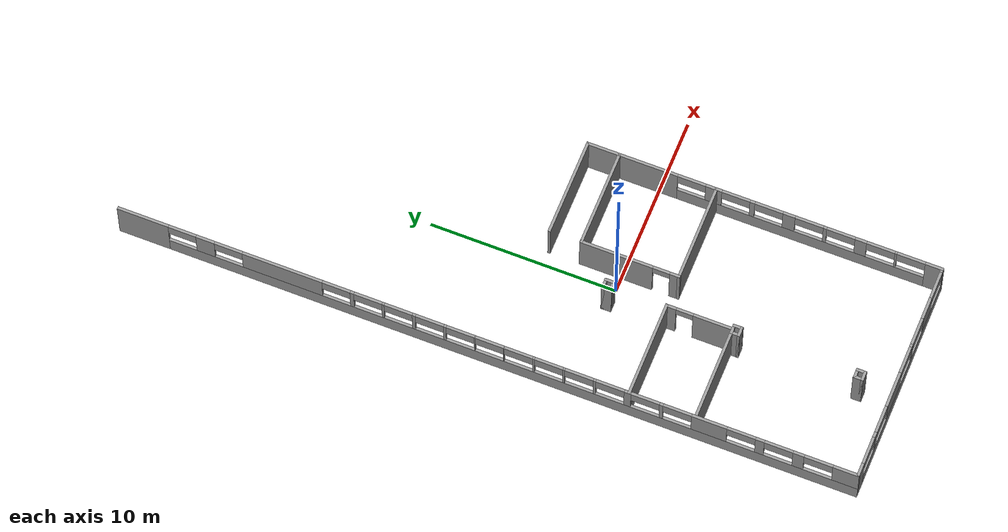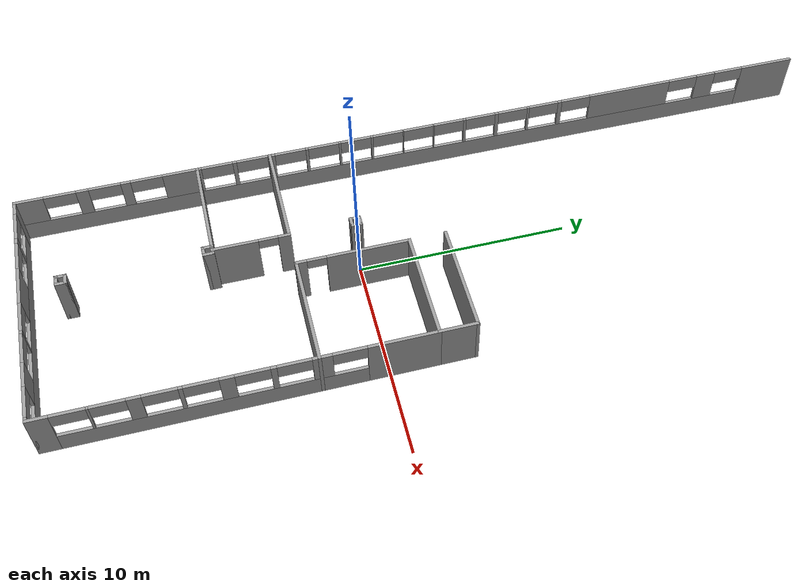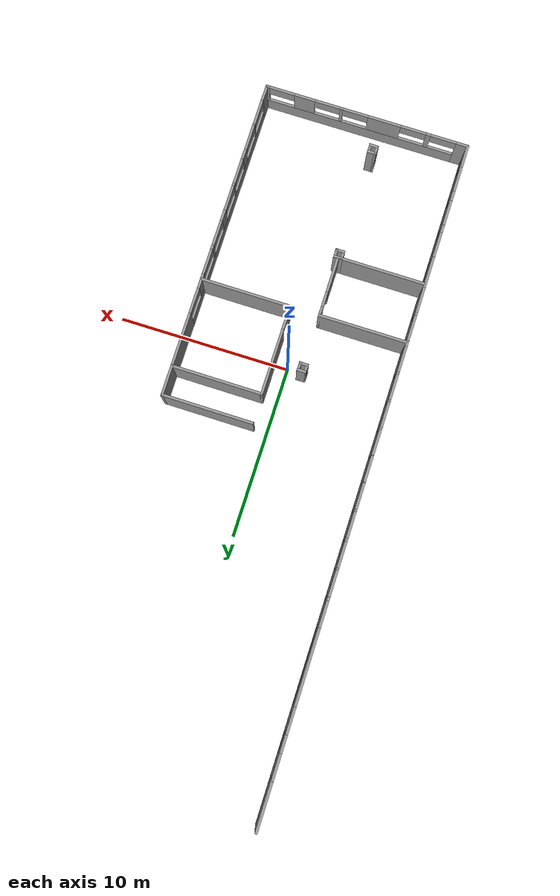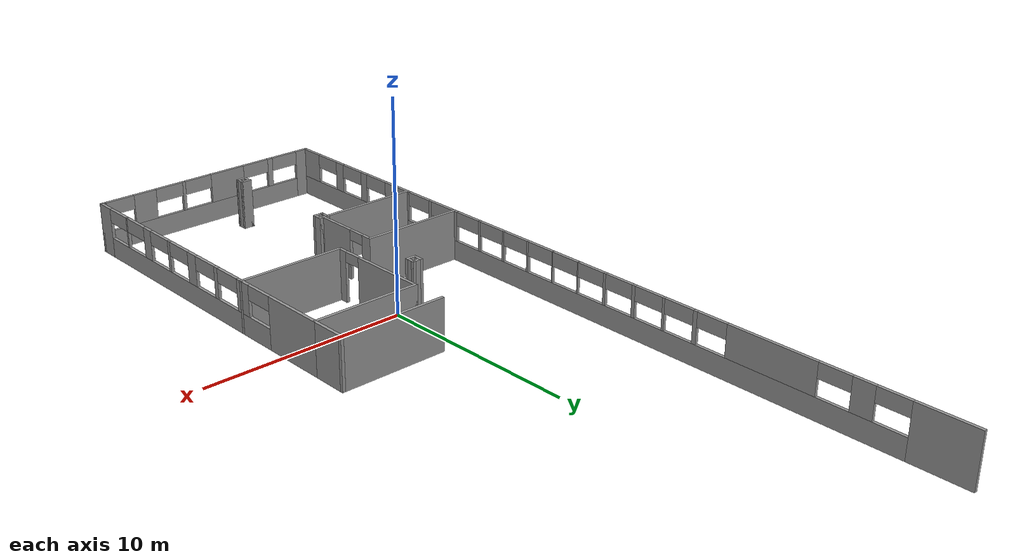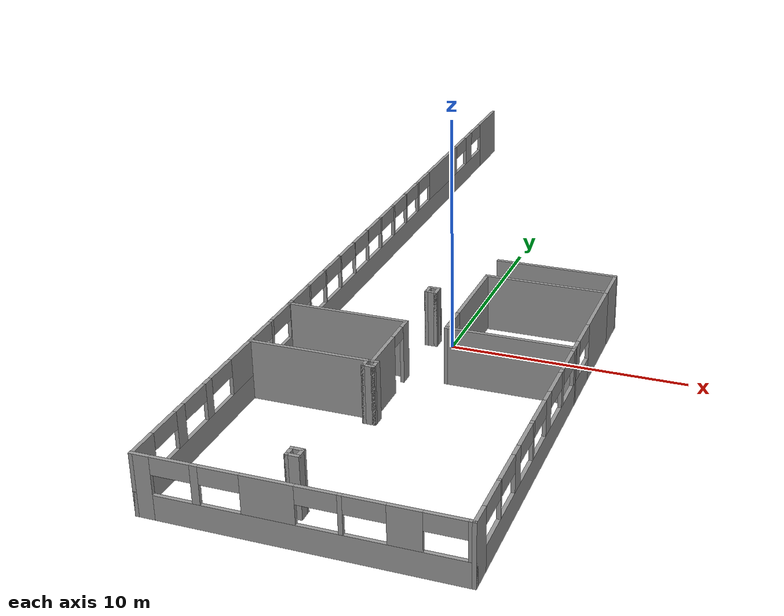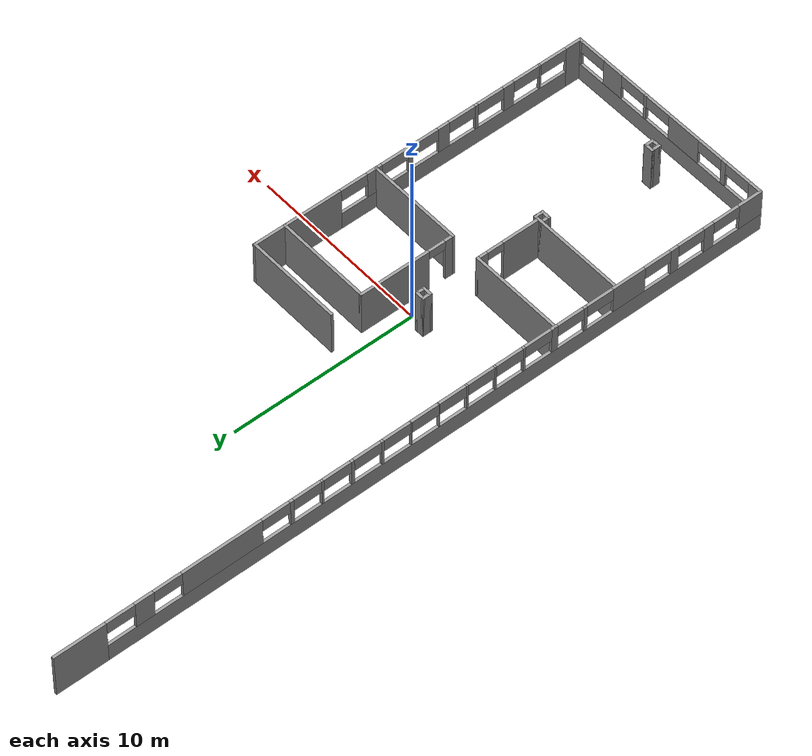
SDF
<sdf version="1.6">
 <model name="Building">
  <pose>0 4.66361 0 0 -0 0</pose>
  <link name="Wall_0">
   <pose>0 -19.6636 0 0 -0 0</pose>
   <visual name="Wall_0_Visual_0">
    <pose>-5.69408 0 1.25 0 -0 0</pose>
    <geometry><box><size>0.761843 0.15 2.5</size></box></geometry>
    <material>
     <script><uri>file://media/materials/scripts/gazebo.material</uri><name>Gazebo/Grey</name></script>
     <ambient>1 1 1 1</ambient>
    </material>
    <meta><layer>0</layer></meta>
   </visual>
   <collision name="Wall_0_Collision_0">
    <geometry><box><size>0.761843 0.15 2.5</size></box></geometry>
    <pose>-5.69408 0 1.25 0 -0 0</pose>
   </collision>
   <visual name="Wall_0_Visual_1">
    <pose>0.380922 0 0.5 0 -0 0</pose>
    <geometry><box><size>11.3882 0.15 1</size></box></geometry>
    <material>
     <script><uri>file://media/materials/scripts/gazebo.material</uri><name>Gazebo/Grey</name></script>
     <ambient>1 1 1 1</ambient>
    </material>
    <meta><layer>0</layer></meta>
   </visual>
   <collision name="Wall_0_Collision_1">
    <geometry><box><size>11.3882 0.15 1</size></box></geometry>
    <pose>0.380922 0 0.5 0 -0 0</pose>
   </collision>
   <visual name="Wall_0_Visual_2">
    <pose>-3.66593 0 1.75 0 -0 0</pose>
    <geometry><box><size>0.294453 0.15 1.5</size></box></geometry>
    <material>
     <script><uri>file://media/materials/scripts/gazebo.material</uri><name>Gazebo/Grey</name></script>
     <ambient>1 1 1 1</ambient>
    </material>
    <meta><layer>0</layer></meta>
   </visual>
   <collision name="Wall_0_Collision_2">
    <geometry><box><size>0.294453 0.15 1.5</size></box></geometry>
    <pose>-3.66593 0 1.75 0 -0 0</pose>
   </collision>
   <visual name="Wall_0_Visual_3">
    <pose>-1.044 0 1.75 0 -0 0</pose>
    <geometry><box><size>1.94941 0.15 1.5</size></box></geometry>
    <material>
     <script><uri>file://media/materials/scripts/gazebo.material</uri><name>Gazebo/Grey</name></script>
     <ambient>1 1 1 1</ambient>
    </material>
    <meta><layer>0</layer></meta>
   </visual>
   <collision name="Wall_0_Collision_3">
    <geometry><box><size>1.94941 0.15 1.5</size></box></geometry>
    <pose>-1.044 0 1.75 0 -0 0</pose>
   </collision>
   <visual name="Wall_0_Visual_4">
    <pose>1.51332 0 1.75 0 -0 0</pose>
    <geometry><box><size>0.165232 0.15 1.5</size></box></geometry>
    <material>
     <script><uri>file://media/materials/scripts/gazebo.material</uri><name>Gazebo/Grey</name></script>
     <ambient>1 1 1 1</ambient>
    </material>
    <meta><layer>0</layer></meta>
   </visual>
   <collision name="Wall_0_Collision_4">
    <geometry><box><size>0.165232 0.15 1.5</size></box></geometry>
    <pose>1.51332 0 1.75 0 -0 0</pose>
   </collision>
   <visual name="Wall_0_Visual_5">
    <pose>3.70368 0 1.75 0 -0 0</pose>
    <geometry><box><size>1.21548 0.15 1.5</size></box></geometry>
    <material>
     <script><uri>file://media/materials/scripts/gazebo.material</uri><name>Gazebo/Grey</name></script>
     <ambient>1 1 1 1</ambient>
    </material>
    <meta><layer>0</layer></meta>
   </visual>
   <collision name="Wall_0_Collision_5">
    <geometry><box><size>1.21548 0.15 1.5</size></box></geometry>
    <pose>3.70368 0 1.75 0 -0 0</pose>
   </collision>
   <visual name="Wall_0_Visual_6">
    <pose>5.94321 0 1.75 0 -0 0</pose>
    <geometry><box><size>0.263587 0.15 1.5</size></box></geometry>
    <material>
     <script><uri>file://media/materials/scripts/gazebo.material</uri><name>Gazebo/Grey</name></script>
     <ambient>1 1 1 1</ambient>
    </material>
    <meta><layer>0</layer></meta>
   </visual>
   <collision name="Wall_0_Collision_6">
    <geometry><box><size>0.263587 0.15 1.5</size></box></geometry>
    <pose>5.94321 0 1.75 0 -0 0</pose>
   </collision>
   <visual name="Wall_0_Visual_7">
    <pose>-4.56316 0 2.15 0 -0 0</pose>
    <geometry><box><size>1.5 0.15 0.7</size></box></geometry>
    <material>
     <script><uri>file://media/materials/scripts/gazebo.material</uri><name>Gazebo/Grey</name></script>
     <ambient>1 1 1 1</ambient>
    </material>
    <meta><layer>0</layer></meta>
   </visual>
   <collision name="Wall_0_Collision_7">
    <geometry><box><size>1.5 0.15 0.7</size></box></geometry>
    <pose>-4.56316 0 2.15 0 -0 0</pose>
   </collision>
   <visual name="Wall_0_Visual_8">
    <pose>-2.7687 0 2.15 0 -0 0</pose>
    <geometry><box><size>1.5 0.15 0.7</size></box></geometry>
    <material>
     <script><uri>file://media/materials/scripts/gazebo.material</uri><name>Gazebo/Grey</name></script>
     <ambient>1 1 1 1</ambient>
    </material>
    <meta><layer>0</layer></meta>
   </visual>
   <collision name="Wall_0_Collision_8">
    <geometry><box><size>1.5 0.15 0.7</size></box></geometry>
    <pose>-2.7687 0 2.15 0 -0 0</pose>
   </collision>
   <visual name="Wall_0_Visual_9">
    <pose>0.680705 0 2.15 0 -0 0</pose>
    <geometry><box><size>1.5 0.15 0.7</size></box></geometry>
    <material>
     <script><uri>file://media/materials/scripts/gazebo.material</uri><name>Gazebo/Grey</name></script>
     <ambient>1 1 1 1</ambient>
    </material>
    <meta><layer>0</layer></meta>
   </visual>
   <collision name="Wall_0_Collision_9">
    <geometry><box><size>1.5 0.15 0.7</size></box></geometry>
    <pose>0.680705 0 2.15 0 -0 0</pose>
   </collision>
   <visual name="Wall_0_Visual_10">
    <pose>2.34594 0 2.15 0 -0 0</pose>
    <geometry><box><size>1.5 0.15 0.7</size></box></geometry>
    <material>
     <script><uri>file://media/materials/scripts/gazebo.material</uri><name>Gazebo/Grey</name></script>
     <ambient>1 1 1 1</ambient>
    </material>
    <meta><layer>0</layer></meta>
   </visual>
   <collision name="Wall_0_Collision_10">
    <geometry><box><size>1.5 0.15 0.7</size></box></geometry>
    <pose>2.34594 0 2.15 0 -0 0</pose>
   </collision>
   <visual name="Wall_0_Visual_11">
    <pose>5.06141 0 2.15 0 -0 0</pose>
    <geometry><box><size>1.5 0.15 0.7</size></box></geometry>
    <material>
     <script><uri>file://media/materials/scripts/gazebo.material</uri><name>Gazebo/Grey</name></script>
     <ambient>1 1 1 1</ambient>
    </material>
    <meta><layer>0</layer></meta>
   </visual>
   <collision name="Wall_0_Collision_11">
    <geometry><box><size>1.5 0.15 0.7</size></box></geometry>
    <pose>5.06141 0 2.15 0 -0 0</pose>
   </collision>
  </link>
  <link name="Wall_10">
   <pose>6 -5.06361 0 0 0 -1.5708</pose>
   <visual name="Wall_10_Visual_0">
    <pose>-1.06584 0 1.25 0 -0 0</pose>
    <geometry><box><size>3.21833 0.15 2.5</size></box></geometry>
    <material>
     <script><uri>file://media/materials/scripts/gazebo.material</uri><name>Gazebo/Grey</name></script>
     <ambient>1 1 1 1</ambient>
    </material>
    <meta><layer>0</layer></meta>
   </visual>
   <collision name="Wall_10_Collision_0">
    <geometry><box><size>3.21833 0.15 2.5</size></box></geometry>
    <pose>-1.06584 0 1.25 0 -0 0</pose>
   </collision>
   <visual name="Wall_10_Visual_1">
    <pose>1.60916 0 0.5 0 -0 0</pose>
    <geometry><box><size>2.13167 0.15 1</size></box></geometry>
    <material>
     <script><uri>file://media/materials/scripts/gazebo.material</uri><name>Gazebo/Grey</name></script>
     <ambient>1 1 1 1</ambient>
    </material>
    <meta><layer>0</layer></meta>
   </visual>
   <collision name="Wall_10_Collision_1">
    <geometry><box><size>2.13167 0.15 1</size></box></geometry>
    <pose>1.60916 0 0.5 0 -0 0</pose>
   </collision>
   <visual name="Wall_10_Visual_2">
    <pose>2.35916 0 1.75 0 -0 0</pose>
    <geometry><box><size>0.631674 0.15 1.5</size></box></geometry>
    <material>
     <script><uri>file://media/materials/scripts/gazebo.material</uri><name>Gazebo/Grey</name></script>
     <ambient>1 1 1 1</ambient>
    </material>
    <meta><layer>0</layer></meta>
   </visual>
   <collision name="Wall_10_Collision_2">
    <geometry><box><size>0.631674 0.15 1.5</size></box></geometry>
    <pose>2.35916 0 1.75 0 -0 0</pose>
   </collision>
   <visual name="Wall_10_Visual_3">
    <pose>1.29333 0 2.15 0 -0 0</pose>
    <geometry><box><size>1.5 0.15 0.7</size></box></geometry>
    <material>
     <script><uri>file://media/materials/scripts/gazebo.material</uri><name>Gazebo/Grey</name></script>
     <ambient>1 1 1 1</ambient>
    </material>
    <meta><layer>0</layer></meta>
   </visual>
   <collision name="Wall_10_Collision_3">
    <geometry><box><size>1.5 0.15 0.7</size></box></geometry>
    <pose>1.29333 0 2.15 0 -0 0</pose>
   </collision>
  </link>
  <link name="Wall_100">
   <collision name="Wall_100_Collision">
    <geometry><box><size>0.55 0.15 2.5</size></box></geometry>
    <pose>0 0 1.25 0 -0 0</pose>
   </collision>
   <visual name="Wall_100_Visual">
    <pose>0 0 1.25 0 -0 0</pose>
    <geometry><box><size>0.55 0.15 2.5</size></box></geometry>
    <material>
     <script><uri>file://media/materials/scripts/gazebo.material</uri><name>Gazebo/Grey</name></script>
     <ambient>1 1 1 1</ambient>
    </material>
    <meta><layer>0</layer></meta>
   </visual>
   <pose>-0.9 -18.0636 0 0 -0 0</pose>
  </link>
  <link name="Wall_102">
   <collision name="Wall_102_Collision">
    <geometry><box><size>0.55 0.15 2.5</size></box></geometry>
    <pose>0 0 1.25 0 -0 0</pose>
   </collision>
   <visual name="Wall_102_Visual">
    <pose>0 0 1.25 0 -0 0</pose>
    <geometry><box><size>0.55 0.15 2.5</size></box></geometry>
    <material>
     <script><uri>file://media/materials/scripts/gazebo.material</uri><name>Gazebo/Grey</name></script>
     <ambient>1 1 1 1</ambient>
    </material>
    <meta><layer>0</layer></meta>
   </visual>
   <pose>-0.9 -17.6636 0 0 -0 0</pose>
  </link>
  <link name="Wall_104">
   <collision name="Wall_104_Collision">
    <geometry><box><size>0.55 0.15 2.5</size></box></geometry>
    <pose>0 0 1.25 0 -0 0</pose>
   </collision>
   <visual name="Wall_104_Visual">
    <pose>0 0 1.25 0 -0 0</pose>
    <geometry><box><size>0.55 0.15 2.5</size></box></geometry>
    <material>
     <script><uri>file://media/materials/scripts/gazebo.material</uri><name>Gazebo/Grey</name></script>
     <ambient>1 1 1 1</ambient>
    </material>
    <meta><layer>0</layer></meta>
   </visual>
   <pose>-1.1 -17.8636 0 0 -0 1.5708</pose>
  </link>
  <link name="Wall_106">
   <collision name="Wall_106_Collision">
    <geometry><box><size>0.55 0.15 2.5</size></box></geometry>
    <pose>0 0 1.25 0 -0 0</pose>
   </collision>
   <visual name="Wall_106_Visual">
    <pose>0 0 1.25 0 -0 0</pose>
    <geometry><box><size>0.55 0.15 2.5</size></box></geometry>
    <material>
     <script><uri>file://media/materials/scripts/gazebo.material</uri><name>Gazebo/Grey</name></script>
     <ambient>1 1 1 1</ambient>
    </material>
    <meta><layer>0</layer></meta>
   </visual>
   <pose>-0.7 -17.8636 0 0 -0 1.5708</pose>
  </link>
  <link name="Wall_14">
   <collision name="Wall_14_Collision">
    <geometry><box><size>1.85 0.15 2.5</size></box></geometry>
    <pose>0 0 1.25 0 -0 0</pose>
   </collision>
   <visual name="Wall_14_Visual">
    <pose>0 0 1.25 0 -0 0</pose>
    <geometry><box><size>1.85 0.15 2.5</size></box></geometry>
    <material>
     <script><uri>file://media/materials/scripts/gazebo.material</uri><name>Gazebo/Grey</name></script>
     <ambient>1 1 1 1</ambient>
    </material>
    <meta><layer>0</layer></meta>
   </visual>
   <pose>6 -1.61361 0 0 -0 1.5708</pose>
  </link>
  <link name="Wall_16">
   <collision name="Wall_16_Collision">
    <geometry><box><size>5.35 0.15 2.5</size></box></geometry>
    <pose>0 0 1.25 0 -0 0</pose>
   </collision>
   <visual name="Wall_16_Visual">
    <pose>0 0 1.25 0 -0 0</pose>
    <geometry><box><size>5.35 0.15 2.5</size></box></geometry>
    <material>
     <script><uri>file://media/materials/scripts/gazebo.material</uri><name>Gazebo/Grey</name></script>
     <ambient>1 1 1 1</ambient>
    </material>
    <meta><layer>0</layer></meta>
   </visual>
   <pose>3.4 -0.763612 0 0 -0 3.14159</pose>
  </link>
  <link name="Wall_2">
   <pose>6 -13.6636 0 0 -0 1.5708</pose>
   <visual name="Wall_2_Visual_0">
    <pose>-5.5945 0 1.25 0 -0 0</pose>
    <geometry><box><size>0.961004 0.15 2.5</size></box></geometry>
    <material>
     <script><uri>file://media/materials/scripts/gazebo.material</uri><name>Gazebo/Grey</name></script>
     <ambient>1 1 1 1</ambient>
    </material>
    <meta><layer>0</layer></meta>
   </visual>
   <collision name="Wall_2_Collision_0">
    <geometry><box><size>0.961004 0.15 2.5</size></box></geometry>
    <pose>-5.5945 0 1.25 0 -0 0</pose>
   </collision>
   <visual name="Wall_2_Visual_1">
    <pose>0.480502 0 0.5 0 -0 0</pose>
    <geometry><box><size>11.189 0.15 1</size></box></geometry>
    <material>
     <script><uri>file://media/materials/scripts/gazebo.material</uri><name>Gazebo/Grey</name></script>
     <ambient>1 1 1 1</ambient>
    </material>
    <meta><layer>0</layer></meta>
   </visual>
   <collision name="Wall_2_Collision_1">
    <geometry><box><size>11.189 0.15 1</size></box></geometry>
    <pose>0.480502 0 0.5 0 -0 0</pose>
   </collision>
   <visual name="Wall_2_Visual_2">
    <pose>-3.56236 0 1.75 0 -0 0</pose>
    <geometry><box><size>0.103271 0.15 1.5</size></box></geometry>
    <material>
     <script><uri>file://media/materials/scripts/gazebo.material</uri><name>Gazebo/Grey</name></script>
     <ambient>1 1 1 1</ambient>
    </material>
    <meta><layer>0</layer></meta>
   </visual>
   <collision name="Wall_2_Collision_2">
    <geometry><box><size>0.103271 0.15 1.5</size></box></geometry>
    <pose>-3.56236 0 1.75 0 -0 0</pose>
   </collision>
   <visual name="Wall_2_Visual_3">
    <pose>-1.70491 0 1.75 0 -0 0</pose>
    <geometry><box><size>0.611626 0.15 1.5</size></box></geometry>
    <material>
     <script><uri>file://media/materials/scripts/gazebo.material</uri><name>Gazebo/Grey</name></script>
     <ambient>1 1 1 1</ambient>
    </material>
    <meta><layer>0</layer></meta>
   </visual>
   <collision name="Wall_2_Collision_3">
    <geometry><box><size>0.611626 0.15 1.5</size></box></geometry>
    <pose>-1.70491 0 1.75 0 -0 0</pose>
   </collision>
   <visual name="Wall_2_Visual_4">
    <pose>0.191642 0 1.75 0 -0 0</pose>
    <geometry><box><size>0.18148 0.15 1.5</size></box></geometry>
    <material>
     <script><uri>file://media/materials/scripts/gazebo.material</uri><name>Gazebo/Grey</name></script>
     <ambient>1 1 1 1</ambient>
    </material>
    <meta><layer>0</layer></meta>
   </visual>
   <collision name="Wall_2_Collision_4">
    <geometry><box><size>0.18148 0.15 1.5</size></box></geometry>
    <pose>0.191642 0 1.75 0 -0 0</pose>
   </collision>
   <visual name="Wall_2_Visual_5">
    <pose>2.10775 0 1.75 0 -0 0</pose>
    <geometry><box><size>0.65073 0.15 1.5</size></box></geometry>
    <material>
     <script><uri>file://media/materials/scripts/gazebo.material</uri><name>Gazebo/Grey</name></script>
     <ambient>1 1 1 1</ambient>
    </material>
    <meta><layer>0</layer></meta>
   </visual>
   <collision name="Wall_2_Collision_5">
    <geometry><box><size>0.65073 0.15 1.5</size></box></geometry>
    <pose>2.10775 0 1.75 0 -0 0</pose>
   </collision>
   <visual name="Wall_2_Visual_6">
    <pose>4.06295 0 1.75 0 -0 0</pose>
    <geometry><box><size>0.259688 0.15 1.5</size></box></geometry>
    <material>
     <script><uri>file://media/materials/scripts/gazebo.material</uri><name>Gazebo/Grey</name></script>
     <ambient>1 1 1 1</ambient>
    </material>
    <meta><layer>0</layer></meta>
   </visual>
   <collision name="Wall_2_Collision_6">
    <geometry><box><size>0.259688 0.15 1.5</size></box></geometry>
    <pose>4.06295 0 1.75 0 -0 0</pose>
   </collision>
   <visual name="Wall_2_Visual_7">
    <pose>5.8839 0 1.75 0 -0 0</pose>
    <geometry><box><size>0.382201 0.15 1.5</size></box></geometry>
    <material>
     <script><uri>file://media/materials/scripts/gazebo.material</uri><name>Gazebo/Grey</name></script>
     <ambient>1 1 1 1</ambient>
    </material>
    <meta><layer>0</layer></meta>
   </visual>
   <collision name="Wall_2_Collision_7">
    <geometry><box><size>0.382201 0.15 1.5</size></box></geometry>
    <pose>5.8839 0 1.75 0 -0 0</pose>
   </collision>
   <visual name="Wall_2_Visual_8">
    <pose>-4.364 0 2.15 0 -0 0</pose>
    <geometry><box><size>1.5 0.15 0.7</size></box></geometry>
    <material>
     <script><uri>file://media/materials/scripts/gazebo.material</uri><name>Gazebo/Grey</name></script>
     <ambient>1 1 1 1</ambient>
    </material>
    <meta><layer>0</layer></meta>
   </visual>
   <collision name="Wall_2_Collision_8">
    <geometry><box><size>1.5 0.15 0.7</size></box></geometry>
    <pose>-4.364 0 2.15 0 -0 0</pose>
   </collision>
   <visual name="Wall_2_Visual_9">
    <pose>-2.76072 0 2.15 0 -0 0</pose>
    <geometry><box><size>1.5 0.15 0.7</size></box></geometry>
    <material>
     <script><uri>file://media/materials/scripts/gazebo.material</uri><name>Gazebo/Grey</name></script>
     <ambient>1 1 1 1</ambient>
    </material>
    <meta><layer>0</layer></meta>
   </visual>
   <collision name="Wall_2_Collision_9">
    <geometry><box><size>1.5 0.15 0.7</size></box></geometry>
    <pose>-2.76072 0 2.15 0 -0 0</pose>
   </collision>
   <visual name="Wall_2_Visual_10">
    <pose>-0.649098 0 2.15 0 -0 0</pose>
    <geometry><box><size>1.5 0.15 0.7</size></box></geometry>
    <material>
     <script><uri>file://media/materials/scripts/gazebo.material</uri><name>Gazebo/Grey</name></script>
     <ambient>1 1 1 1</ambient>
    </material>
    <meta><layer>0</layer></meta>
   </visual>
   <collision name="Wall_2_Collision_10">
    <geometry><box><size>1.5 0.15 0.7</size></box></geometry>
    <pose>-0.649098 0 2.15 0 -0 0</pose>
   </collision>
   <visual name="Wall_2_Visual_11">
    <pose>1.03238 0 2.15 0 -0 0</pose>
    <geometry><box><size>1.5 0.15 0.7</size></box></geometry>
    <material>
     <script><uri>file://media/materials/scripts/gazebo.material</uri><name>Gazebo/Grey</name></script>
     <ambient>1 1 1 1</ambient>
    </material>
    <meta><layer>0</layer></meta>
   </visual>
   <collision name="Wall_2_Collision_11">
    <geometry><box><size>1.5 0.15 0.7</size></box></geometry>
    <pose>1.03238 0 2.15 0 -0 0</pose>
   </collision>
   <visual name="Wall_2_Visual_12">
    <pose>3.18311 0 2.15 0 -0 0</pose>
    <geometry><box><size>1.5 0.15 0.7</size></box></geometry>
    <material>
     <script><uri>file://media/materials/scripts/gazebo.material</uri><name>Gazebo/Grey</name></script>
     <ambient>1 1 1 1</ambient>
    </material>
    <meta><layer>0</layer></meta>
   </visual>
   <collision name="Wall_2_Collision_12">
    <geometry><box><size>1.5 0.15 0.7</size></box></geometry>
    <pose>3.18311 0 2.15 0 -0 0</pose>
   </collision>
   <visual name="Wall_2_Visual_13">
    <pose>4.9428 0 2.15 0 -0 0</pose>
    <geometry><box><size>1.5 0.15 0.7</size></box></geometry>
    <material>
     <script><uri>file://media/materials/scripts/gazebo.material</uri><name>Gazebo/Grey</name></script>
     <ambient>1 1 1 1</ambient>
    </material>
    <meta><layer>0</layer></meta>
   </visual>
   <collision name="Wall_2_Collision_13">
    <geometry><box><size>1.5 0.15 0.7</size></box></geometry>
    <pose>4.9428 0 2.15 0 -0 0</pose>
   </collision>
  </link>
  <link name="Wall_4">
   <collision name="Wall_4_Collision">
    <geometry><box><size>5.35 0.15 2.5</size></box></geometry>
    <pose>0 0 1.25 0 -0 0</pose>
   </collision>
   <visual name="Wall_4_Visual">
    <pose>0 0 1.25 0 -0 0</pose>
    <geometry><box><size>5.35 0.15 2.5</size></box></geometry>
    <material>
     <script><uri>file://media/materials/scripts/gazebo.material</uri><name>Gazebo/Grey</name></script>
     <ambient>1 1 1 1</ambient>
    </material>
    <meta><layer>0</layer></meta>
   </visual>
   <pose>3.4 -7.66361 0 0 -0 0</pose>
  </link>
  <link name="Wall_51">
   <pose>-6 -0.013612 0 0 0 -1.5708</pose>
   <visual name="Wall_51_Visual_0">
    <pose>-18.3455 0 1.25 0 -0 0</pose>
    <geometry><box><size>2.75908 0.15 2.5</size></box></geometry>
    <material>
     <script><uri>file://media/materials/scripts/gazebo.material</uri><name>Gazebo/Grey</name></script>
     <ambient>1 1 1 1</ambient>
    </material>
    <meta><layer>0</layer></meta>
   </visual>
   <collision name="Wall_51_Collision_0">
    <geometry><box><size>2.75908 0.15 2.5</size></box></geometry>
    <pose>-18.3455 0 1.25 0 -0 0</pose>
   </collision>
   <visual name="Wall_51_Visual_1">
    <pose>1.37954 0 0.5 0 -0 0</pose>
    <geometry><box><size>36.6909 0.15 1</size></box></geometry>
    <material>
     <script><uri>file://media/materials/scripts/gazebo.material</uri><name>Gazebo/Grey</name></script>
     <ambient>1 1 1 1</ambient>
    </material>
    <meta><layer>0</layer></meta>
   </visual>
   <collision name="Wall_51_Collision_1">
    <geometry><box><size>36.6909 0.15 1</size></box></geometry>
    <pose>1.37954 0 0.5 0 -0 0</pose>
   </collision>
   <visual name="Wall_51_Visual_2">
    <pose>-14.9676 0 1.75 0 -0 0</pose>
    <geometry><box><size>0.996685 0.15 1.5</size></box></geometry>
    <material>
     <script><uri>file://media/materials/scripts/gazebo.material</uri><name>Gazebo/Grey</name></script>
     <ambient>1 1 1 1</ambient>
    </material>
    <meta><layer>0</layer></meta>
   </visual>
   <collision name="Wall_51_Collision_2">
    <geometry><box><size>0.996685 0.15 1.5</size></box></geometry>
    <pose>-14.9676 0 1.75 0 -0 0</pose>
   </collision>
   <visual name="Wall_51_Visual_3">
    <pose>-10.8228 0 1.75 0 -0 0</pose>
    <geometry><box><size>4.29294 0.15 1.5</size></box></geometry>
    <material>
     <script><uri>file://media/materials/scripts/gazebo.material</uri><name>Gazebo/Grey</name></script>
     <ambient>1 1 1 1</ambient>
    </material>
    <meta><layer>0</layer></meta>
   </visual>
   <collision name="Wall_51_Collision_3">
    <geometry><box><size>4.29294 0.15 1.5</size></box></geometry>
    <pose>-10.8228 0 1.75 0 -0 0</pose>
   </collision>
   <visual name="Wall_51_Visual_4">
    <pose>-7.07187 0 1.75 0 -0 0</pose>
    <geometry><box><size>0.208853 0.15 1.5</size></box></geometry>
    <material>
     <script><uri>file://media/materials/scripts/gazebo.material</uri><name>Gazebo/Grey</name></script>
     <ambient>1 1 1 1</ambient>
    </material>
    <meta><layer>0</layer></meta>
   </visual>
   <collision name="Wall_51_Collision_4">
    <geometry><box><size>0.208853 0.15 1.5</size></box></geometry>
    <pose>-7.07187 0 1.75 0 -0 0</pose>
   </collision>
   <visual name="Wall_51_Visual_5">
    <pose>-5.40799 0 1.75 0 -0 0</pose>
    <geometry><box><size>0.118914 0.15 1.5</size></box></geometry>
    <material>
     <script><uri>file://media/materials/scripts/gazebo.material</uri><name>Gazebo/Grey</name></script>
     <ambient>1 1 1 1</ambient>
    </material>
    <meta><layer>0</layer></meta>
   </visual>
   <collision name="Wall_51_Collision_5">
    <geometry><box><size>0.118914 0.15 1.5</size></box></geometry>
    <pose>-5.40799 0 1.75 0 -0 0</pose>
   </collision>
   <visual name="Wall_51_Visual_6">
    <pose>-3.7599 0 1.75 0 -0 0</pose>
    <geometry><box><size>0.177264 0.15 1.5</size></box></geometry>
    <material>
     <script><uri>file://media/materials/scripts/gazebo.material</uri><name>Gazebo/Grey</name></script>
     <ambient>1 1 1 1</ambient>
    </material>
    <meta><layer>0</layer></meta>
   </visual>
   <collision name="Wall_51_Collision_6">
    <geometry><box><size>0.177264 0.15 1.5</size></box></geometry>
    <pose>-3.7599 0 1.75 0 -0 0</pose>
   </collision>
   <visual name="Wall_51_Visual_7">
    <pose>-2.10352 0 1.75 0 -0 0</pose>
    <geometry><box><size>0.135496 0.15 1.5</size></box></geometry>
    <material>
     <script><uri>file://media/materials/scripts/gazebo.material</uri><name>Gazebo/Grey</name></script>
     <ambient>1 1 1 1</ambient>
    </material>
    <meta><layer>0</layer></meta>
   </visual>
   <collision name="Wall_51_Collision_7">
    <geometry><box><size>0.135496 0.15 1.5</size></box></geometry>
    <pose>-2.10352 0 1.75 0 -0 0</pose>
   </collision>
   <visual name="Wall_51_Visual_8">
    <pose>-0.512627 0 1.75 0 -0 0</pose>
    <geometry><box><size>0.046287 0.15 1.5</size></box></geometry>
    <material>
     <script><uri>file://media/materials/scripts/gazebo.material</uri><name>Gazebo/Grey</name></script>
     <ambient>1 1 1 1</ambient>
    </material>
    <meta><layer>0</layer></meta>
   </visual>
   <collision name="Wall_51_Collision_8">
    <geometry><box><size>0.046287 0.15 1.5</size></box></geometry>
    <pose>-0.512627 0 1.75 0 -0 0</pose>
   </collision>
   <visual name="Wall_51_Visual_9">
    <pose>1.03366 0 1.75 0 -0 0</pose>
    <geometry><box><size>0.046287 0.15 1.5</size></box></geometry>
    <material>
     <script><uri>file://media/materials/scripts/gazebo.material</uri><name>Gazebo/Grey</name></script>
     <ambient>1 1 1 1</ambient>
    </material>
    <meta><layer>0</layer></meta>
   </visual>
   <collision name="Wall_51_Collision_9">
    <geometry><box><size>0.046287 0.15 1.5</size></box></geometry>
    <pose>1.03366 0 1.75 0 -0 0</pose>
   </collision>
   <visual name="Wall_51_Visual_10">
    <pose>2.60968 0 1.75 0 -0 0</pose>
    <geometry><box><size>0.105759 0.15 1.5</size></box></geometry>
    <material>
     <script><uri>file://media/materials/scripts/gazebo.material</uri><name>Gazebo/Grey</name></script>
     <ambient>1 1 1 1</ambient>
    </material>
    <meta><layer>0</layer></meta>
   </visual>
   <collision name="Wall_51_Collision_10">
    <geometry><box><size>0.105759 0.15 1.5</size></box></geometry>
    <pose>2.60968 0 1.75 0 -0 0</pose>
   </collision>
   <visual name="Wall_51_Visual_11">
    <pose>4.21544 0 1.75 0 -0 0</pose>
    <geometry><box><size>0.105759 0.15 1.5</size></box></geometry>
    <material>
     <script><uri>file://media/materials/scripts/gazebo.material</uri><name>Gazebo/Grey</name></script>
     <ambient>1 1 1 1</ambient>
    </material>
    <meta><layer>0</layer></meta>
   </visual>
   <collision name="Wall_51_Collision_11">
    <geometry><box><size>0.105759 0.15 1.5</size></box></geometry>
    <pose>4.21544 0 1.75 0 -0 0</pose>
   </collision>
   <visual name="Wall_51_Visual_12">
    <pose>5.83607 0 1.75 0 -0 0</pose>
    <geometry><box><size>0.135496 0.15 1.5</size></box></geometry>
    <material>
     <script><uri>file://media/materials/scripts/gazebo.material</uri><name>Gazebo/Grey</name></script>
     <ambient>1 1 1 1</ambient>
    </material>
    <meta><layer>0</layer></meta>
   </visual>
   <collision name="Wall_51_Collision_12">
    <geometry><box><size>0.135496 0.15 1.5</size></box></geometry>
    <pose>5.83607 0 1.75 0 -0 0</pose>
   </collision>
   <visual name="Wall_51_Visual_13">
    <pose>7.58352 0 1.75 0 -0 0</pose>
    <geometry><box><size>0.359396 0.15 1.5</size></box></geometry>
    <material>
     <script><uri>file://media/materials/scripts/gazebo.material</uri><name>Gazebo/Grey</name></script>
     <ambient>1 1 1 1</ambient>
    </material>
    <meta><layer>0</layer></meta>
   </visual>
   <collision name="Wall_51_Collision_13">
    <geometry><box><size>0.359396 0.15 1.5</size></box></geometry>
    <pose>7.58352 0 1.75 0 -0 0</pose>
   </collision>
   <visual name="Wall_51_Visual_14">
    <pose>9.3585 0 1.75 0 -0 0</pose>
    <geometry><box><size>0.190582 0.15 1.5</size></box></geometry>
    <material>
     <script><uri>file://media/materials/scripts/gazebo.material</uri><name>Gazebo/Grey</name></script>
     <ambient>1 1 1 1</ambient>
    </material>
    <meta><layer>0</layer></meta>
   </visual>
   <collision name="Wall_51_Collision_14">
    <geometry><box><size>0.190582 0.15 1.5</size></box></geometry>
    <pose>9.3585 0 1.75 0 -0 0</pose>
   </collision>
   <visual name="Wall_51_Visual_15">
    <pose>11.8794 0 1.75 0 -0 0</pose>
    <geometry><box><size>1.85122 0.15 1.5</size></box></geometry>
    <material>
     <script><uri>file://media/materials/scripts/gazebo.material</uri><name>Gazebo/Grey</name></script>
     <ambient>1 1 1 1</ambient>
    </material>
    <meta><layer>0</layer></meta>
   </visual>
   <collision name="Wall_51_Collision_15">
    <geometry><box><size>1.85122 0.15 1.5</size></box></geometry>
    <pose>11.8794 0 1.75 0 -0 0</pose>
   </collision>
   <visual name="Wall_51_Visual_16">
    <pose>14.5363 0 1.75 0 -0 0</pose>
    <geometry><box><size>0.462595 0.15 1.5</size></box></geometry>
    <material>
     <script><uri>file://media/materials/scripts/gazebo.material</uri><name>Gazebo/Grey</name></script>
     <ambient>1 1 1 1</ambient>
    </material>
    <meta><layer>0</layer></meta>
   </visual>
   <collision name="Wall_51_Collision_16">
    <geometry><box><size>0.462595 0.15 1.5</size></box></geometry>
    <pose>14.5363 0 1.75 0 -0 0</pose>
   </collision>
   <visual name="Wall_51_Visual_17">
    <pose>16.5584 0 1.75 0 -0 0</pose>
    <geometry><box><size>0.58154 0.15 1.5</size></box></geometry>
    <material>
     <script><uri>file://media/materials/scripts/gazebo.material</uri><name>Gazebo/Grey</name></script>
     <ambient>1 1 1 1</ambient>
    </material>
    <meta><layer>0</layer></meta>
   </visual>
   <collision name="Wall_51_Collision_17">
    <geometry><box><size>0.58154 0.15 1.5</size></box></geometry>
    <pose>16.5584 0 1.75 0 -0 0</pose>
   </collision>
   <visual name="Wall_51_Visual_18">
    <pose>19.0371 0 1.75 0 -0 0</pose>
    <geometry><box><size>1.37585 0.15 1.5</size></box></geometry>
    <material>
     <script><uri>file://media/materials/scripts/gazebo.material</uri><name>Gazebo/Grey</name></script>
     <ambient>1 1 1 1</ambient>
    </material>
    <meta><layer>0</layer></meta>
   </visual>
   <collision name="Wall_51_Collision_18">
    <geometry><box><size>1.37585 0.15 1.5</size></box></geometry>
    <pose>19.0371 0 1.75 0 -0 0</pose>
   </collision>
   <visual name="Wall_51_Visual_19">
    <pose>-16.2159 0 2.15 0 -0 0</pose>
    <geometry><box><size>1.5 0.15 0.7</size></box></geometry>
    <material>
     <script><uri>file://media/materials/scripts/gazebo.material</uri><name>Gazebo/Grey</name></script>
     <ambient>1 1 1 1</ambient>
    </material>
    <meta><layer>0</layer></meta>
   </visual>
   <collision name="Wall_51_Collision_19">
    <geometry><box><size>1.5 0.15 0.7</size></box></geometry>
    <pose>-16.2159 0 2.15 0 -0 0</pose>
   </collision>
   <visual name="Wall_51_Visual_20">
    <pose>-13.7192 0 2.15 0 -0 0</pose>
    <geometry><box><size>1.5 0.15 0.7</size></box></geometry>
    <material>
     <script><uri>file://media/materials/scripts/gazebo.material</uri><name>Gazebo/Grey</name></script>
     <ambient>1 1 1 1</ambient>
    </material>
    <meta><layer>0</layer></meta>
   </visual>
   <collision name="Wall_51_Collision_20">
    <geometry><box><size>1.5 0.15 0.7</size></box></geometry>
    <pose>-13.7192 0 2.15 0 -0 0</pose>
   </collision>
   <visual name="Wall_51_Visual_21">
    <pose>-7.9263 0 2.15 0 -0 0</pose>
    <geometry><box><size>1.5 0.15 0.7</size></box></geometry>
    <material>
     <script><uri>file://media/materials/scripts/gazebo.material</uri><name>Gazebo/Grey</name></script>
     <ambient>1 1 1 1</ambient>
    </material>
    <meta><layer>0</layer></meta>
   </visual>
   <collision name="Wall_51_Collision_21">
    <geometry><box><size>1.5 0.15 0.7</size></box></geometry>
    <pose>-7.9263 0 2.15 0 -0 0</pose>
   </collision>
   <visual name="Wall_51_Visual_22">
    <pose>-6.21744 0 2.15 0 -0 0</pose>
    <geometry><box><size>1.5 0.15 0.7</size></box></geometry>
    <material>
     <script><uri>file://media/materials/scripts/gazebo.material</uri><name>Gazebo/Grey</name></script>
     <ambient>1 1 1 1</ambient>
    </material>
    <meta><layer>0</layer></meta>
   </visual>
   <collision name="Wall_51_Collision_22">
    <geometry><box><size>1.5 0.15 0.7</size></box></geometry>
    <pose>-6.21744 0 2.15 0 -0 0</pose>
   </collision>
   <visual name="Wall_51_Visual_23">
    <pose>-4.59853 0 2.15 0 -0 0</pose>
    <geometry><box><size>1.5 0.15 0.7</size></box></geometry>
    <material>
     <script><uri>file://media/materials/scripts/gazebo.material</uri><name>Gazebo/Grey</name></script>
     <ambient>1 1 1 1</ambient>
    </material>
    <meta><layer>0</layer></meta>
   </visual>
   <collision name="Wall_51_Collision_23">
    <geometry><box><size>1.5 0.15 0.7</size></box></geometry>
    <pose>-4.59853 0 2.15 0 -0 0</pose>
   </collision>
   <visual name="Wall_51_Visual_24">
    <pose>-2.92127 0 2.15 0 -0 0</pose>
    <geometry><box><size>1.5 0.15 0.7</size></box></geometry>
    <material>
     <script><uri>file://media/materials/scripts/gazebo.material</uri><name>Gazebo/Grey</name></script>
     <ambient>1 1 1 1</ambient>
    </material>
    <meta><layer>0</layer></meta>
   </visual>
   <collision name="Wall_51_Collision_24">
    <geometry><box><size>1.5 0.15 0.7</size></box></geometry>
    <pose>-2.92127 0 2.15 0 -0 0</pose>
   </collision>
   <visual name="Wall_51_Visual_25">
    <pose>-1.28577 0 2.15 0 -0 0</pose>
    <geometry><box><size>1.5 0.15 0.7</size></box></geometry>
    <material>
     <script><uri>file://media/materials/scripts/gazebo.material</uri><name>Gazebo/Grey</name></script>
     <ambient>1 1 1 1</ambient>
    </material>
    <meta><layer>0</layer></meta>
   </visual>
   <collision name="Wall_51_Collision_25">
    <geometry><box><size>1.5 0.15 0.7</size></box></geometry>
    <pose>-1.28577 0 2.15 0 -0 0</pose>
   </collision>
   <visual name="Wall_51_Visual_26">
    <pose>0.260517 0 2.15 0 -0 0</pose>
    <geometry><box><size>1.5 0.15 0.7</size></box></geometry>
    <material>
     <script><uri>file://media/materials/scripts/gazebo.material</uri><name>Gazebo/Grey</name></script>
     <ambient>1 1 1 1</ambient>
    </material>
    <meta><layer>0</layer></meta>
   </visual>
   <collision name="Wall_51_Collision_26">
    <geometry><box><size>1.5 0.15 0.7</size></box></geometry>
    <pose>0.260517 0 2.15 0 -0 0</pose>
   </collision>
   <visual name="Wall_51_Visual_27">
    <pose>1.8068 0 2.15 0 -0 0</pose>
    <geometry><box><size>1.5 0.15 0.7</size></box></geometry>
    <material>
     <script><uri>file://media/materials/scripts/gazebo.material</uri><name>Gazebo/Grey</name></script>
     <ambient>1 1 1 1</ambient>
    </material>
    <meta><layer>0</layer></meta>
   </visual>
   <collision name="Wall_51_Collision_27">
    <geometry><box><size>1.5 0.15 0.7</size></box></geometry>
    <pose>1.8068 0 2.15 0 -0 0</pose>
   </collision>
   <visual name="Wall_51_Visual_28">
    <pose>3.41256 0 2.15 0 -0 0</pose>
    <geometry><box><size>1.5 0.15 0.7</size></box></geometry>
    <material>
     <script><uri>file://media/materials/scripts/gazebo.material</uri><name>Gazebo/Grey</name></script>
     <ambient>1 1 1 1</ambient>
    </material>
    <meta><layer>0</layer></meta>
   </visual>
   <collision name="Wall_51_Collision_28">
    <geometry><box><size>1.5 0.15 0.7</size></box></geometry>
    <pose>3.41256 0 2.15 0 -0 0</pose>
   </collision>
   <visual name="Wall_51_Visual_29">
    <pose>5.01832 0 2.15 0 -0 0</pose>
    <geometry><box><size>1.5 0.15 0.7</size></box></geometry>
    <material>
     <script><uri>file://media/materials/scripts/gazebo.material</uri><name>Gazebo/Grey</name></script>
     <ambient>1 1 1 1</ambient>
    </material>
    <meta><layer>0</layer></meta>
   </visual>
   <collision name="Wall_51_Collision_29">
    <geometry><box><size>1.5 0.15 0.7</size></box></geometry>
    <pose>5.01832 0 2.15 0 -0 0</pose>
   </collision>
   <visual name="Wall_51_Visual_30">
    <pose>6.65382 0 2.15 0 -0 0</pose>
    <geometry><box><size>1.5 0.15 0.7</size></box></geometry>
    <material>
     <script><uri>file://media/materials/scripts/gazebo.material</uri><name>Gazebo/Grey</name></script>
     <ambient>1 1 1 1</ambient>
    </material>
    <meta><layer>0</layer></meta>
   </visual>
   <collision name="Wall_51_Collision_30">
    <geometry><box><size>1.5 0.15 0.7</size></box></geometry>
    <pose>6.65382 0 2.15 0 -0 0</pose>
   </collision>
   <visual name="Wall_51_Visual_31">
    <pose>8.51321 0 2.15 0 -0 0</pose>
    <geometry><box><size>1.5 0.15 0.7</size></box></geometry>
    <material>
     <script><uri>file://media/materials/scripts/gazebo.material</uri><name>Gazebo/Grey</name></script>
     <ambient>1 1 1 1</ambient>
    </material>
    <meta><layer>0</layer></meta>
   </visual>
   <collision name="Wall_51_Collision_31">
    <geometry><box><size>1.5 0.15 0.7</size></box></geometry>
    <pose>8.51321 0 2.15 0 -0 0</pose>
   </collision>
   <visual name="Wall_51_Visual_32">
    <pose>10.2038 0 2.15 0 -0 0</pose>
    <geometry><box><size>1.5 0.15 0.7</size></box></geometry>
    <material>
     <script><uri>file://media/materials/scripts/gazebo.material</uri><name>Gazebo/Grey</name></script>
     <ambient>1 1 1 1</ambient>
    </material>
    <meta><layer>0</layer></meta>
   </visual>
   <collision name="Wall_51_Collision_32">
    <geometry><box><size>1.5 0.15 0.7</size></box></geometry>
    <pose>10.2038 0 2.15 0 -0 0</pose>
   </collision>
   <visual name="Wall_51_Visual_33">
    <pose>13.555 0 2.15 0 -0 0</pose>
    <geometry><box><size>1.5 0.15 0.7</size></box></geometry>
    <material>
     <script><uri>file://media/materials/scripts/gazebo.material</uri><name>Gazebo/Grey</name></script>
     <ambient>1 1 1 1</ambient>
    </material>
    <meta><layer>0</layer></meta>
   </visual>
   <collision name="Wall_51_Collision_33">
    <geometry><box><size>1.5 0.15 0.7</size></box></geometry>
    <pose>13.555 0 2.15 0 -0 0</pose>
   </collision>
   <visual name="Wall_51_Visual_34">
    <pose>15.5176 0 2.15 0 -0 0</pose>
    <geometry><box><size>1.5 0.15 0.7</size></box></geometry>
    <material>
     <script><uri>file://media/materials/scripts/gazebo.material</uri><name>Gazebo/Grey</name></script>
     <ambient>1 1 1 1</ambient>
    </material>
    <meta><layer>0</layer></meta>
   </visual>
   <collision name="Wall_51_Collision_34">
    <geometry><box><size>1.5 0.15 0.7</size></box></geometry>
    <pose>15.5176 0 2.15 0 -0 0</pose>
   </collision>
   <visual name="Wall_51_Visual_35">
    <pose>17.5992 0 2.15 0 -0 0</pose>
    <geometry><box><size>1.5 0.15 0.7</size></box></geometry>
    <material>
     <script><uri>file://media/materials/scripts/gazebo.material</uri><name>Gazebo/Grey</name></script>
     <ambient>1 1 1 1</ambient>
    </material>
    <meta><layer>0</layer></meta>
   </visual>
   <collision name="Wall_51_Collision_35">
    <geometry><box><size>1.5 0.15 0.7</size></box></geometry>
    <pose>17.5992 0 2.15 0 -0 0</pose>
   </collision>
  </link>
  <link name="Wall_53">
   <collision name="Wall_53_Collision">
    <geometry><box><size>5.25 0.15 2.5</size></box></geometry>
    <pose>0 0 1.25 0 -0 0</pose>
   </collision>
   <visual name="Wall_53_Visual">
    <pose>0 0 1.25 0 -0 0</pose>
    <geometry><box><size>5.25 0.15 2.5</size></box></geometry>
    <material>
     <script><uri>file://media/materials/scripts/gazebo.material</uri><name>Gazebo/Grey</name></script>
     <ambient>1 1 1 1</ambient>
    </material>
    <meta><layer>0</layer></meta>
   </visual>
   <pose>-3.45 -7.66361 0 0 -0 0</pose>
  </link>
  <link name="Wall_55">
   <collision name="Wall_55_Collision">
    <geometry><box><size>5.25 0.15 2.5</size></box></geometry>
    <pose>0 0 1.25 0 -0 0</pose>
   </collision>
   <visual name="Wall_55_Visual">
    <pose>0 0 1.25 0 -0 0</pose>
    <geometry><box><size>5.25 0.15 2.5</size></box></geometry>
    <material>
     <script><uri>file://media/materials/scripts/gazebo.material</uri><name>Gazebo/Grey</name></script>
     <ambient>1 1 1 1</ambient>
    </material>
    <meta><layer>0</layer></meta>
   </visual>
   <pose>-3.45 -11.1636 0 0 -0 0</pose>
  </link>
  <link name="Wall_57">
   <pose>-0.9 -9.41361 0 0 0 -1.5708</pose>
   <visual name="Wall_57_Visual_0">
    <pose>-1.52984 0 1.25 0 -0 0</pose>
    <geometry><box><size>0.59032 0.15 2.5</size></box></geometry>
    <material>
     <script><uri>file://media/materials/scripts/gazebo.material</uri><name>Gazebo/Grey</name></script>
     <ambient>1 1 1 1</ambient>
    </material>
    <meta><layer>0</layer></meta>
   </visual>
   <collision name="Wall_57_Collision_0">
    <geometry><box><size>0.59032 0.15 2.5</size></box></geometry>
    <pose>-1.52984 0 1.25 0 -0 0</pose>
   </collision>
   <visual name="Wall_57_Visual_1">
    <pose>0.74516 0 1.25 0 -0 0</pose>
    <geometry><box><size>2.15968 0.15 2.5</size></box></geometry>
    <material>
     <script><uri>file://media/materials/scripts/gazebo.material</uri><name>Gazebo/Grey</name></script>
     <ambient>1 1 1 1</ambient>
    </material>
    <meta><layer>0</layer></meta>
   </visual>
   <collision name="Wall_57_Collision_1">
    <geometry><box><size>2.15968 0.15 2.5</size></box></geometry>
    <pose>0.74516 0 1.25 0 -0 0</pose>
   </collision>
   <visual name="Wall_57_Visual_2">
    <pose>-0.78468 0 2.25 0 -0 0</pose>
    <geometry><box><size>0.9 0.15 0.5</size></box></geometry>
    <material>
     <script><uri>file://media/materials/scripts/gazebo.material</uri><name>Gazebo/Grey</name></script>
     <ambient>1 1 1 1</ambient>
    </material>
    <meta><layer>0</layer></meta>
   </visual>
   <collision name="Wall_57_Collision_2">
    <geometry><box><size>0.9 0.15 0.5</size></box></geometry>
    <pose>-0.78468 0 2.25 0 -0 0</pose>
   </collision>
  </link>
  <link name="Wall_6">
   <pose>0.8 -5.06361 0 0 -0 1.5708</pose>
   <visual name="Wall_6_Visual_0">
    <pose>-2.39762 0 1.25 0 -0 0</pose>
    <geometry><box><size>0.55477 0.15 2.5</size></box></geometry>
    <material>
     <script><uri>file://media/materials/scripts/gazebo.material</uri><name>Gazebo/Grey</name></script>
     <ambient>1 1 1 1</ambient>
    </material>
    <meta><layer>0</layer></meta>
   </visual>
   <collision name="Wall_6_Collision_0">
    <geometry><box><size>0.55477 0.15 2.5</size></box></geometry>
    <pose>-2.39762 0 1.25 0 -0 0</pose>
   </collision>
   <visual name="Wall_6_Visual_1">
    <pose>0.727385 0 1.25 0 -0 0</pose>
    <geometry><box><size>3.89523 0.15 2.5</size></box></geometry>
    <material>
     <script><uri>file://media/materials/scripts/gazebo.material</uri><name>Gazebo/Grey</name></script>
     <ambient>1 1 1 1</ambient>
    </material>
    <meta><layer>0</layer></meta>
   </visual>
   <collision name="Wall_6_Collision_1">
    <geometry><box><size>3.89523 0.15 2.5</size></box></geometry>
    <pose>0.727385 0 1.25 0 -0 0</pose>
   </collision>
   <visual name="Wall_6_Visual_2">
    <pose>-1.67023 0 2.25 0 -0 0</pose>
    <geometry><box><size>0.9 0.15 0.5</size></box></geometry>
    <material>
     <script><uri>file://media/materials/scripts/gazebo.material</uri><name>Gazebo/Grey</name></script>
     <ambient>1 1 1 1</ambient>
    </material>
    <meta><layer>0</layer></meta>
   </visual>
   <collision name="Wall_6_Collision_2">
    <geometry><box><size>0.9 0.15 0.5</size></box></geometry>
    <pose>-1.67023 0 2.25 0 -0 0</pose>
   </collision>
  </link>
  <link name="Wall_8">
   <collision name="Wall_8_Collision">
    <geometry><box><size>5.35 0.15 2.5</size></box></geometry>
    <pose>0 0 1.25 0 -0 0</pose>
   </collision>
   <visual name="Wall_8_Visual">
    <pose>0 0 1.25 0 -0 0</pose>
    <geometry><box><size>5.35 0.15 2.5</size></box></geometry>
    <material>
     <script><uri>file://media/materials/scripts/gazebo.material</uri><name>Gazebo/Grey</name></script>
     <ambient>1 1 1 1</ambient>
    </material>
    <meta><layer>0</layer></meta>
   </visual>
   <pose>3.4 -2.46361 0 0 -0 0</pose>
  </link>
  <link name="Wall_80">
   <collision name="Wall_80_Collision">
    <geometry><box><size>0.55 0.15 2.5</size></box></geometry>
    <pose>0 0 1.25 0 -0 0</pose>
   </collision>
   <visual name="Wall_80_Visual">
    <pose>0 0 1.25 0 -0 0</pose>
    <geometry><box><size>0.55 0.15 2.5</size></box></geometry>
    <material>
     <script><uri>file://media/materials/scripts/gazebo.material</uri><name>Gazebo/Grey</name></script>
     <ambient>1 1 1 1</ambient>
    </material>
    <meta><layer>0</layer></meta>
   </visual>
   <pose>-0.9 -4.76361 0 0 -0 0</pose>
  </link>
  <link name="Wall_82">
   <collision name="Wall_82_Collision">
    <geometry><box><size>0.55 0.15 2.5</size></box></geometry>
    <pose>0 0 1.25 0 -0 0</pose>
   </collision>
   <visual name="Wall_82_Visual">
    <pose>0 0 1.25 0 -0 0</pose>
    <geometry><box><size>0.55 0.15 2.5</size></box></geometry>
    <material>
     <script><uri>file://media/materials/scripts/gazebo.material</uri><name>Gazebo/Grey</name></script>
     <ambient>1 1 1 1</ambient>
    </material>
    <meta><layer>0</layer></meta>
   </visual>
   <pose>-0.9 -4.36361 0 0 -0 0</pose>
  </link>
  <link name="Wall_84">
   <collision name="Wall_84_Collision">
    <geometry><box><size>0.55 0.15 2.5</size></box></geometry>
    <pose>0 0 1.25 0 -0 0</pose>
   </collision>
   <visual name="Wall_84_Visual">
    <pose>0 0 1.25 0 -0 0</pose>
    <geometry><box><size>0.55 0.15 2.5</size></box></geometry>
    <material>
     <script><uri>file://media/materials/scripts/gazebo.material</uri><name>Gazebo/Grey</name></script>
     <ambient>1 1 1 1</ambient>
    </material>
    <meta><layer>0</layer></meta>
   </visual>
   <pose>-1.1 -4.56361 0 0 0 -1.5708</pose>
  </link>
  <link name="Wall_86">
   <collision name="Wall_86_Collision">
    <geometry><box><size>0.55 0.15 2.5</size></box></geometry>
    <pose>0 0 1.25 0 -0 0</pose>
   </collision>
   <visual name="Wall_86_Visual">
    <pose>0 0 1.25 0 -0 0</pose>
    <geometry><box><size>0.55 0.15 2.5</size></box></geometry>
    <material>
     <script><uri>file://media/materials/scripts/gazebo.material</uri><name>Gazebo/Grey</name></script>
     <ambient>1 1 1 1</ambient>
    </material>
    <meta><layer>0</layer></meta>
   </visual>
   <pose>-0.7 -4.56361 0 0 0 -1.5708</pose>
  </link>
  <link name="Wall_88">
   <collision name="Wall_88_Collision">
    <geometry><box><size>0.55 0.15 2.5</size></box></geometry>
    <pose>0 0 1.25 0 -0 0</pose>
   </collision>
   <visual name="Wall_88_Visual">
    <pose>0 0 1.25 0 -0 0</pose>
    <geometry><box><size>0.55 0.15 2.5</size></box></geometry>
    <material>
     <script><uri>file://media/materials/scripts/gazebo.material</uri><name>Gazebo/Grey</name></script>
     <ambient>1 1 1 1</ambient>
    </material>
    <meta><layer>0</layer></meta>
   </visual>
   <pose>-0.9 -11.5636 0 0 -0 0</pose>
  </link>
  <link name="Wall_94">
   <collision name="Wall_94_Collision">
    <geometry><box><size>0.55 0.15 2.5</size></box></geometry>
    <pose>0 0 1.25 0 -0 0</pose>
   </collision>
   <visual name="Wall_94_Visual">
    <pose>0 0 1.25 0 -0 0</pose>
    <geometry><box><size>0.55 0.15 2.5</size></box></geometry>
    <material>
     <script><uri>file://media/materials/scripts/gazebo.material</uri><name>Gazebo/Grey</name></script>
     <ambient>1 1 1 1</ambient>
    </material>
    <meta><layer>0</layer></meta>
   </visual>
   <pose>-0.9 -11.1636 0 0 -0 3.14159</pose>
  </link>
  <link name="Wall_96">
   <collision name="Wall_96_Collision">
    <geometry><box><size>0.55 0.15 2.5</size></box></geometry>
    <pose>0 0 1.25 0 -0 0</pose>
   </collision>
   <visual name="Wall_96_Visual">
    <pose>0 0 1.25 0 -0 0</pose>
    <geometry><box><size>0.55 0.15 2.5</size></box></geometry>
    <material>
     <script><uri>file://media/materials/scripts/gazebo.material</uri><name>Gazebo/Grey</name></script>
     <ambient>1 1 1 1</ambient>
    </material>
    <meta><layer>0</layer></meta>
   </visual>
   <pose>-1.1 -11.3636 0 0 0 -1.5708</pose>
  </link>
  <link name="Wall_98">
   <collision name="Wall_98_Collision">
    <geometry><box><size>0.55 0.15 2.5</size></box></geometry>
    <pose>0 0 1.25 0 -0 0</pose>
   </collision>
   <visual name="Wall_98_Visual">
    <pose>0 0 1.25 0 -0 0</pose>
    <geometry><box><size>0.55 0.15 2.5</size></box></geometry>
    <material>
     <script><uri>file://media/materials/scripts/gazebo.material</uri><name>Gazebo/Grey</name></script>
     <ambient>1 1 1 1</ambient>
    </material>
    <meta><layer>0</layer></meta>
   </visual>
   <pose>-0.7 -11.3636 0 0 0 -1.5708</pose>
  </link>
  <static>1</static>
 </model>
</sdf>
